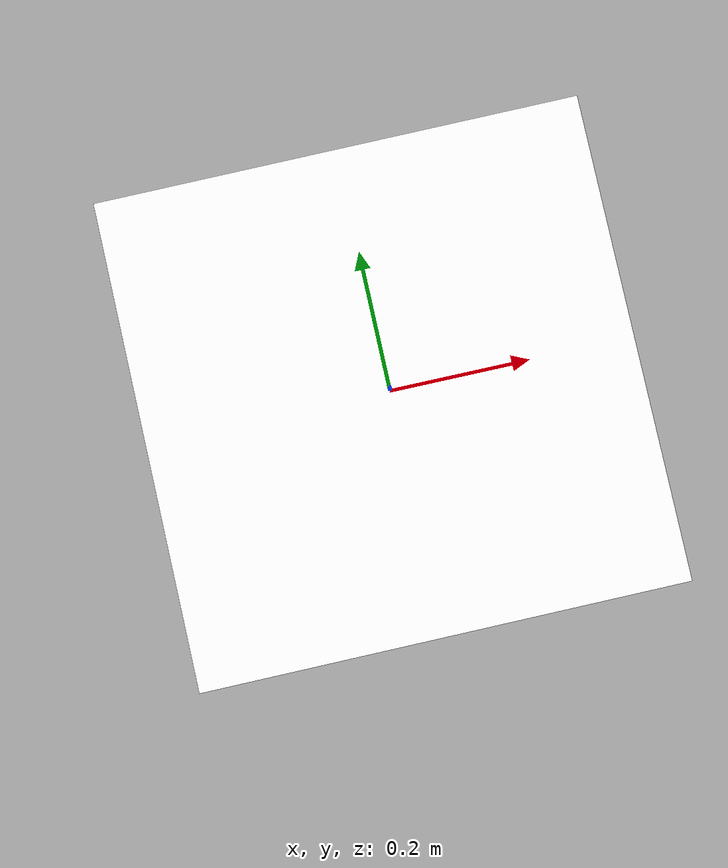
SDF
<?xml version='1.0'?>
<sdf version='1.5'>
  <model name='integration_marker_2'>

    <link name='marker'>
      <pose frame=''>0 0 0 0 0 0</pose>
      <visual name='visual'>
        <geometry>
          <box>
            <size>0.7 0.7 1e-5</size>
          </box>
        </geometry>
        <material>
          <script>
            <uri>model://integration_marker_2/materials/scripts</uri>
            <uri>model://integration_marker_2/materials/textures</uri>
            <name>IntegrationMarker2/Marker</name>
          </script>
          <ambient>1 1 1 1</ambient>
          <diffuse>1 1 1 1</diffuse>
          <specular>0 0 0 1</specular>
          <emissive>1 1 1 0</emissive>
          <shader type='vertex'>
            <normal_map>__default__</normal_map>
          </shader>
        </material>
        <pose frame=''>0 0 0 0 -0 0</pose>
        <cast_shadows>1</cast_shadows>
        <transparency>0</transparency>
      </visual>
      <collision name='collision'>
        <laser_retro>0</laser_retro>
        <max_contacts>10</max_contacts>
        <pose frame=''>0 0 0 0 -0 0</pose>
        <geometry>
          <box>
            <size>0.7 0.7 1e-05</size>
          </box>
        </geometry>
      </collision>
    </link>

    <static>1</static>
    <allow_auto_disable>1</allow_auto_disable>

  </model>
</sdf>
